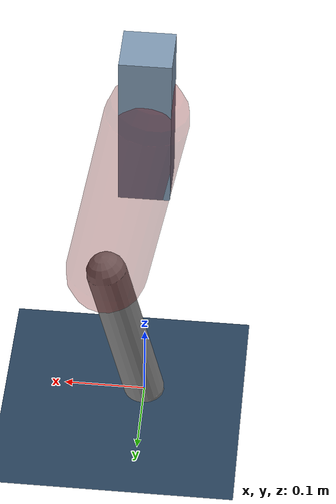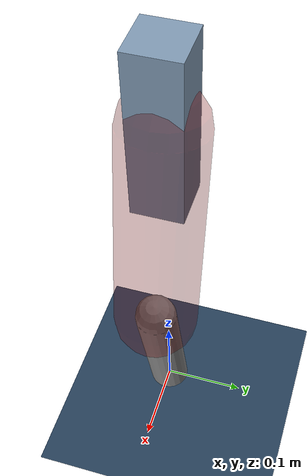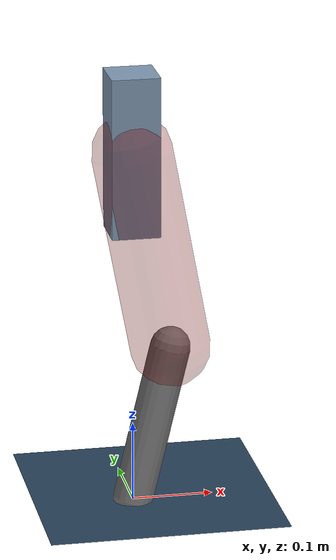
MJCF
<mujoco model="Hopper2D">
	<compiler inertiafromgeom="true" angle="radian" />
	<option timestep="0.001" integrator="implicit" cone="elliptic" solver="Newton" tolerance="1e-10" />

	<default>
		<geom contype="1" conaffinity="1" condim="3" friction="2 0.005 0.0001" solref="0.005 1" />
		<joint limited="true" damping="0.1" />
	</default>

	<asset>
		<texture name="skybox" type="skybox" builtin="gradient" rgb1=".4 .6 .8" rgb2="0 0 0" width="800" height="800" />
		<texture name="grid" type="2d" builtin="checker" rgb1=".1 .2 .3" rgb2=".2 .3 .4" width="300" height="300" mark="edge" markrgb=".2 .3 .4" />
		<material name="ground" texture="grid" texrepeat="1 1" texuniform="true" reflectance="0.1" />
		<material name="leg" rgba="0.5 0.6 0.7 1" />
	</asset>

	<worldbody>

		<geom name="floor" type="plane" size="5 5 0.25" material="ground" />

		<light directional="false" diffuse="0.8 0.8 0.8" specular="0.3 0.3 0.3" pos="0 0 2" dir="0 0 -1" />
		<light mode="targetbodycom" target="base" directional="false" diffuse="0.8 0.8 0.8" specular="0.3 0.3 0.3" pos="0 0 2" dir="0 0 -1" />

		<camera name="fixed" pos="0 -2 1" xyaxes="1 0 0 0 0 1" />
		<camera name="tracking" mode="trackcom" pos="0 -3 1" />

		<body name="root" pos="0 0 0.45027127415436713">
			<joint name="slide_x" type="slide" axis="1 0 0" range="-100 100" />
			<joint name="slide_z" type="slide" axis="0 0 1" range="0 10" />

			<body name="base" pos="0 0 0">
				<geom name="torso" type="box" size="0.03 0.03 0.1" mass="3.467" material="leg" />

				<body name="link1" pos="0 0 0" euler="0 1.3847025673978104 0">
					<joint type="hinge" axis="0 -1 0" pos="0 0 0" name="hinge1" limited="true" range="-3.14 3.14" stiffness="0" damping="0.1" />
					<geom name="thigh" type="capsule" fromto="0 0 0 0.25614203753300785 0 0" size="0.05" rgba="0.5 0 0 0.3" mass="0.8723692975858204" />

					<body name="link2" pos="0.25614203753300785 0 0" euler="0 0.4203972982790699 0">
						<joint type="hinge" axis="0 -1 0" pos="0 0 0" name="hinge2" limited="true" range="-3.14 3.14" stiffness="0" damping="0.1" />
						<geom name="shank" type="capsule" fromto="0 0 0 0.2041292366213593 0 0" size="0.025" mass="0.4044033892970874" />

					</body>
				</body>
			</body>
		</body>
	</worldbody>

	<actuator>
		<motor name="torque1" joint="hinge1" ctrlrange="-65.56520154111557 65.56520154111557" ctrllimited="true" gear="1" />
		<motor name="torque2" joint="hinge2" ctrlrange="-225.5579784731134 225.5579784731134" ctrllimited="true" gear="1" />
	</actuator>
</mujoco>
